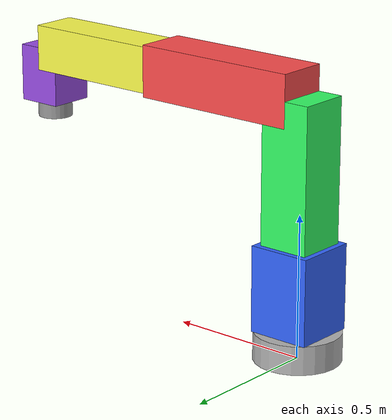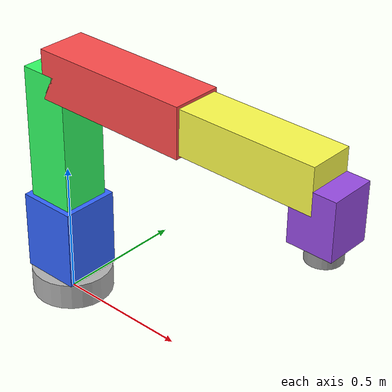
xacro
<?xml version="1.0"?>
<robot xmlns:xacro="http://ros.org/wiki/xacro" name="simple_arm">

  <!-- =========================
       共通: 色付きボックスリンク
       - 完全な慣性テンソルを指定
       - 視覚・衝突メッシュの原点を共通化
     ========================= -->
  <xacro:macro name="colored_box"
               params="name size xyz color mass:=2.0
                       ixx:=0.05 iyy:=0.05 izz:=0.05
                       ixy:=0.0 ixz:=0.0 iyz:=0.0">
    <link name="${name}">
      <inertial>
        <mass value="${mass}"/>
        <inertia ixx="${ixx}" iyy="${iyy}" izz="${izz}"
                 ixy="${ixy}" ixz="${ixz}" iyz="${iyz}"/>
      </inertial>
      <visual>
        <origin xyz="${xyz}" rpy="0 0 0"/>
        <geometry><box size="${size}"/></geometry>
        <material name="${color}">
          <color rgba="${color}"/>
        </material>
      </visual>
      <collision>
        <origin xyz="${xyz}" rpy="0 0 0"/>
        <geometry><box size="${size}"/></geometry>
      </collision>
    </link>
  </xacro:macro>

  <!-- =========================
       base_link (固定台座)
     ========================= -->
  <link name="base_link">
    <visual>
      <origin xyz="0 0 0.05" rpy="0 0 0"/>
      <geometry><cylinder radius="0.15" length="0.1"/></geometry>
      <material name="gray_base"><color rgba="0.7 0.7 0.7 1"/></material>
    </visual>
    <collision>
      <origin xyz="0 0 0.05" rpy="0 0 0"/>
      <geometry><cylinder radius="0.15" length="0.1"/></geometry>
    </collision>
  </link>

  <!-- joint1: ベース旋回 -->
  <joint name="joint1" type="revolute">
    <parent link="base_link"/>
    <child link="link1"/>
    <origin xyz="0 0 0.1" rpy="0 0 0"/>
    <axis xyz="0 0 1"/>
    <limit lower="-3.14" upper="3.14" effort="10" velocity="1.0"/>
  </joint>

  <!-- link1: 縦リンク -->
  <xacro:colored_box name="link1" size="0.22 0.22 0.3" xyz="0 0 0.15" color="0.2 0.4 1.0 1"/>

  <!-- joint2: 肩ピッチ -->
  <joint name="joint2" type="revolute">
    <parent link="link1"/>
    <child link="link2"/>
    <origin xyz="0 0 0.3" rpy="0 0 0"/>
    <axis xyz="0 1 0"/>
    <limit lower="-1.57" upper="1.57" effort="10" velocity="1.0"/>
  </joint>

  <!-- link2: 肩 -->
  <xacro:colored_box name="link2" size="0.18 0.18 0.5" xyz="0 0 0.25" color="0.2 1.0 0.4 1"/>

  <!-- joint3: 肘ピッチ -->
  <joint name="joint3" type="revolute">
    <parent link="link2"/>
    <child link="link3"/>
    <origin xyz="0 0 0.5" rpy="0 0 0"/>
    <axis xyz="0 1 0"/>
    <limit lower="-1.57" upper="1.57" effort="10" velocity="1.0"/>
  </joint>

  <!-- link3: 上腕 -->
  <xacro:colored_box name="link3" size="0.6 0.18 0.18" xyz="0.3 0 0" color="1.0 0.3 0.3 1"/>

  <!-- joint4: 前腕回転 -->
  <joint name="joint4" type="revolute">
    <parent link="link3"/>
    <child link="link4"/>
    <origin xyz="0.6 0 0" rpy="0 0 0"/>
    <axis xyz="1 0 0"/>                   <!-- X軸回りのロール -->
    <limit lower="-1.57" upper="1.57" effort="10" velocity="1.0"/>
  </joint>

  <!-- link4: 前腕 -->
  <xacro:colored_box name="link4" size="0.5 0.16 0.16" xyz="0.25 0 0" color="1.0 1.0 0.3 1"/>

  <!-- joint5: 手首ピッチ -->
  <joint name="joint5" type="revolute">
    <parent link="link4"/>
    <child link="link5"/>
    <origin xyz="0.5 0 0" rpy="0 0 0"/>
    <axis xyz="0 1 0"/>
    <limit lower="-1.57" upper="1.57" effort="10" velocity="1.0"/>
  </joint>

  <!-- link5: 手首ピッチ部 -->
  <xacro:colored_box name="link5" size="0.16 0.16 0.2" xyz="0 0 -0.1" color="0.6 0.3 0.9 1"/>

  <!-- joint6: 手首ロール -->
  <joint name="joint6" type="revolute">
    <parent link="link5"/>
    <child link="link6"/>
    <origin xyz="0 0 0" rpy="0 0 0"/>  <!-- J5のBOX中心 -->
    <axis xyz="0 0 1"/>                   <!-- Z軸回りのロール -->
    <limit lower="-1.57" upper="1.57" effort="10" velocity="1.0"/>
  </joint>

  <!-- link6: エンドエフェクタ -->
  <link name="link6">
    <visual>
      <origin xyz="0 0 -0.2" rpy="0 0 0"/>
      <geometry><cylinder radius="0.06" length="0.12"/></geometry>
      <material name="gray"><color rgba="0.6 0.6 0.6 1"/></material>
    </visual>
    <collision>
      <origin xyz="0 0 -0.2" rpy="0 0 0"/>
      <geometry><cylinder radius="0.06" length="0.12"/></geometry>
    </collision>
  </link>

  <!-- Gazeboセンサ（Ignition/Gazeboクラシック向けプラグイン記述はそのまま） -->
  <gazebo reference="link6">
    <sensor name="distance_sensor" type="ray">
      <pose>0 0 0.1 0 0 0</pose>
      <update_rate>30</update_rate>
      <always_on>true</always_on>
      <ray>
        <scan><horizontal><samples>1</samples></horizontal></scan>
        <range><min>0.01</min><max>2.0</max><resolution>0.01</resolution></range>
      </ray>
      <plugin name="gazebo_ros_ray_sensor" filename="libgazebo_ros_ray_sensor.so">
        <ros><namespace>simple_arm</namespace></ros>
        <output_type>sensor_msgs/Range</output_type>
        <radiation_type>ultrasound</radiation_type>
      </plugin>
    </sensor>
  </gazebo>

  <!-- =========================
       ros2_control 設定
       - 各ジョイントを position 制御対象として宣言
       - 実機がない場合は fake_components を利用
     ========================= -->
  <ros2_control name="SimpleArmSystem" type="system">
    <hardware>
      <plugin>fake_components/GenericSystem</plugin>
    </hardware>

    <joint name="joint1">
      <command_interface name="position"/>
      <state_interface name="position"/>
      <state_interface name="velocity"/>
    </joint>
    <joint name="joint2">
      <command_interface name="position"/>
      <state_interface name="position"/>
      <state_interface name="velocity"/>
    </joint>
    <joint name="joint3">
      <command_interface name="position"/>
      <state_interface name="position"/>
      <state_interface name="velocity"/>
    </joint>
    <joint name="joint4">
      <command_interface name="position"/>
      <state_interface name="position"/>
      <state_interface name="velocity"/>
    </joint>
    <joint name="joint5">
      <command_interface name="position"/>
      <state_interface name="position"/>
      <state_interface name="velocity"/>
    </joint>
    <joint name="joint6">
      <command_interface name="position"/>
      <state_interface name="position"/>
      <state_interface name="velocity"/>
    </joint>
  </ros2_control>

</robot>
